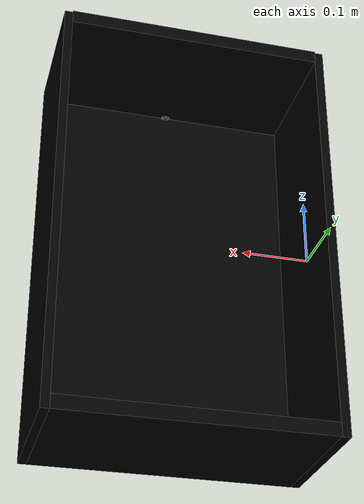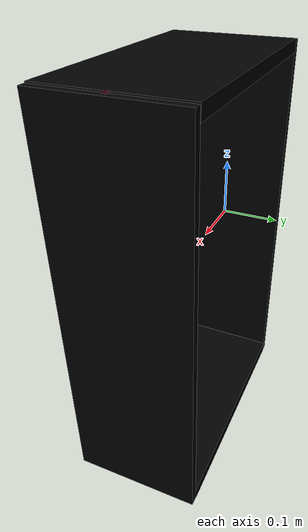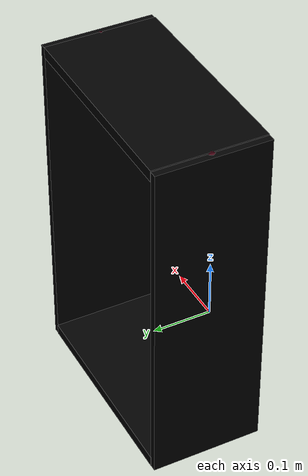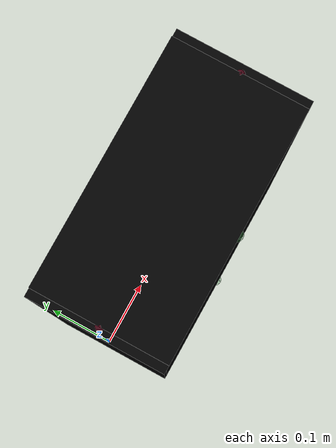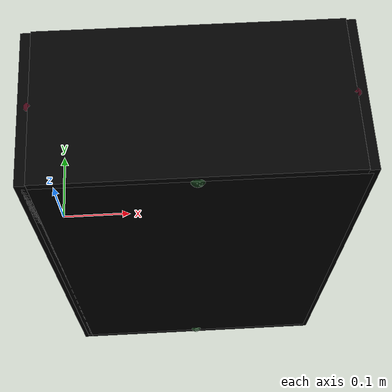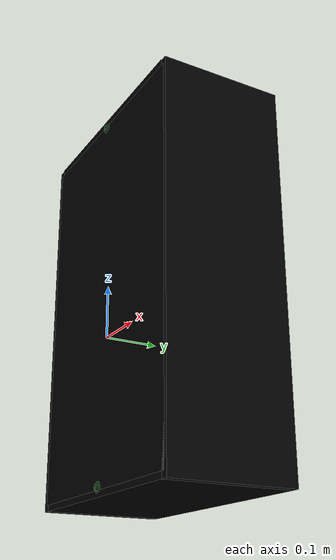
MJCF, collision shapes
<mujoco model="cabinet_lillagen_0933">
    <custom>
        <numeric data="0.439537 0.339589 0.006423 0.707107 -0.0 -0.707107 0.0" name="0_part0_initpos"/>
        <numeric data="0.054072 -0.034652 0.00251 0.50006 -0.50006 0.49994 -0.49994" name="4_part4_initpos"/>
        <numeric data="-0.438442 -0.04081 0.01013 0.707107 0.0 0.0 0.707106" name="3_part3_initpos"/>
        <numeric data="0.53541 -0.05037 0.01013 0.707107 0.0 0.0 -0.707106" name="2_part2_initpos"/>
        <numeric data="-0.276949 0.336844 0.005927 0.707107 -0.0 0.707107 -0.0" name="1_part1_initpos"/>
    </custom>
    <asset>
        <mesh file="cabinet_lillagen_0933/0.stl" name="part0" scale="0.001 0.001 0.001"/>
        <mesh file="cabinet_lillagen_0933/4.stl" name="part4" scale="0.001 0.001 0.001"/>
        <mesh file="cabinet_lillagen_0933/3.stl" name="part3" scale="0.001 0.001 0.001"/>
        <mesh file="cabinet_lillagen_0933/2.stl" name="part2" scale="0.001 0.001 0.001"/>
        <mesh file="cabinet_lillagen_0933/1.stl" name="part1" scale="0.001 0.001 0.001"/>
    </asset>
    <equality>
        <weld active="false" body1="0_part0" body2="2_part2" solimp="1 1 0.5" solref="0.01 0.3"/>
        <weld active="false" body1="0_part0" body2="3_part3" solimp="1 1 0.5" solref="0.01 0.3"/>
        <weld active="false" body1="1_part1" body2="2_part2" solimp="1 1 0.5" solref="0.01 0.3"/>
        <weld active="false" body1="1_part1" body2="3_part3" solimp="1 1 0.5" solref="0.01 0.3"/>
        <weld active="false" body1="2_part2" body2="4_part4" solimp="1 1 0.5" solref="0.01 0.3"/>
        <weld active="false" body1="3_part3" body2="4_part4" solimp="1 1 0.5" solref="0.01 0.3"/>
        <weld active="false" body1="1_part1" body2="2_part2" solimp="1 1 0.5" solref="0.01 0.3"/>
        <weld active="false" body1="1_part1" body2="3_part3" solimp="1 1 0.5" solref="0.01 0.3"/>
        <weld active="false" body1="0_part0" body2="2_part2" solimp="1 1 0.5" solref="0.01 0.3"/>
        <weld active="false" body1="0_part0" body2="3_part3" solimp="1 1 0.5" solref="0.01 0.3"/>
        <weld active="false" body1="4_part4" body2="2_part2" solimp="1 1 0.5" solref="0.01 0.3"/>
        <weld active="false" body1="4_part4" body2="3_part3" solimp="1 1 0.5" solref="0.01 0.3"/>
    </equality>
    <worldbody>
        <body name="0_part0" pos="0.0 -0.0 0.0" quat="1 0 0 0">
            <geom conaffinity="0" contype="0" density="0" mesh="part0" name="0_part0_mesh" pos="0.0 0.0 0.0"
                  rgba="0.82 0.71 0.55 1" type="mesh"/>
            <site name="0_part0_horizontal_radius_site" pos="0.0 -0.0 0.0" quat="1 0 0 0" rgba="0 0 0 0" size="0.001"/>
            <site name="0_part0_top_site" pos="0.0 0.0 0.31750000000000006" quat="1 0 0 0" rgba="0 0 0 0" size="0.001"/>
            <site name="0_part0_bottom_site" pos="0.0 0.0 -0.31750000000000006" quat="1 0 0 0" rgba="0 0 0 0"
                  size="0.001"/>
            <site name="0_part0_corner_site8" pos="-0.006350000000000001 0.10160000000000001 0.31750000000000006"
                  quat="1 0 0 0" rgba="0 0 0 0" size="0.020000000000000004"/>
            <site name="0_part0_corner_site7" pos="0.006350000000000001 0.10160000000000001 0.31750000000000006"
                  quat="1 0 0 0" rgba="0 0 0 0" size="0.020000000000000004"/>
            <site name="0_part0_corner_site6" pos="0.006350000000000001 -0.10160000000000001 0.31750000000000006"
                  quat="1 0 0 0" rgba="0 0 0 0" size="0.020000000000000004"/>
            <site name="0_part0_corner_site5" pos="-0.006350000000000001 -0.10160000000000001 0.31750000000000006"
                  quat="1 0 0 0" rgba="0 0 0 0" size="0.020000000000000004"/>
            <site name="0_part0_corner_site4" pos="-0.006350000000000001 0.10160000000000001 -0.31750000000000006"
                  quat="1 0 0 0" rgba="0 0 0 0" size="0.020000000000000004"/>
            <site name="0_part0_corner_site3" pos="0.006350000000000001 0.10160000000000001 -0.31750000000000006"
                  quat="1 0 0 0" rgba="0 0 0 0" size="0.020000000000000004"/>
            <site name="0_part0_corner_site2" pos="0.006350000000000001 -0.10160000000000001 -0.31750000000000006"
                  quat="1 0 0 0" rgba="0 0 0 0" size="0.020000000000000004"/>
            <site name="0_part0_corner_site1" pos="-0.006350000000000001 -0.10160000000000001 -0.31750000000000006"
                  quat="1 0 0 0" rgba="0 0 0 0" size="0.020000000000000004"/>
            <site name="side-flat,0,conn_site4" pos="0.007000000000000001 0.0 -0.30734" quat="0.7071067 0 0.7071068 0"
                  rgba="0.9019 0.0980 0.2941 0.3" size="0.01"/>
            <site name="side-flat,0,conn_site2" pos="0.007000000000000001 0.0 0.30800000000000005"
                  quat="0.7071067 0 0.7071068 0" rgba="0.9019 0.0980 0.2941 0.3" size="0.01"/>
            <geom density="50" name="noviz_collision_0_part0_0" pos="0.00019657 0.00097561 -0.0009270800000000002"
                  quat="1 0 0 0" rgba="0 0 0 0" size="0.006546570000000001 0.10257559999999999 0.31657290000000005"
                  solref="0.001 1" type="box"/>
        </body>
        <body name="4_part4" pos="0.1968500031 -0.09906000000000001 1.3400000000000001e-08" quat="1 0 0 0">
            <geom conaffinity="0" contype="0" density="0" mesh="part4" name="4_part4_mesh" pos="0.0 0.0 0.0"
                  rgba="0.82 0.71 0.55 1" type="mesh"/>
            <site name="4_part4_horizontal_radius_site" pos="0.0 0.0 0.0" quat="1 0 0 0" rgba="0 0 0 0" size="0.001"/>
            <site name="4_part4_top_site" pos="0.0 0.0 0.3073400269" quat="1 0 0 0" rgba="0 0 0 0" size="0.001"/>
            <site name="4_part4_bottom_site" pos="0.0 0.0 -0.3073400269" quat="1 0 0 0" rgba="0 0 0 0" size="0.001"/>
            <site name="4_part4_corner_site8" pos="-0.19685000610000003 0.0025400000000000006 0.3073400269"
                  quat="1 0 0 0" rgba="0 0 0 0" size="0.020000000000000004"/>
            <site name="4_part4_corner_site7" pos="0.19685000610000003 0.0025400000000000006 0.3073400269"
                  quat="1 0 0 0" rgba="0 0 0 0" size="0.020000000000000004"/>
            <site name="4_part4_corner_site6" pos="0.19685000610000003 -0.0025400000000000006 0.3073400269"
                  quat="1 0 0 0" rgba="0 0 0 0" size="0.020000000000000004"/>
            <site name="4_part4_corner_site5" pos="-0.19685000610000003 -0.0025400000000000006 0.3073400269"
                  quat="1 0 0 0" rgba="0 0 0 0" size="0.020000000000000004"/>
            <site name="4_part4_corner_site4" pos="-0.19685000610000003 0.0025400000000000006 -0.3073400269"
                  quat="1 0 0 0" rgba="0 0 0 0" size="0.020000000000000004"/>
            <site name="4_part4_corner_site3" pos="0.19685000610000003 0.0025400000000000006 -0.3073400269"
                  quat="1 0 0 0" rgba="0 0 0 0" size="0.020000000000000004"/>
            <site name="4_part4_corner_site2" pos="0.19685000610000003 -0.0025400000000000006 -0.3073400269"
                  quat="1 0 0 0" rgba="0 0 0 0" size="0.020000000000000004"/>
            <site name="4_part4_corner_site1" pos="-0.19685000610000003 -0.0025400000000000006 -0.3073400269"
                  quat="1 0 0 0" rgba="0 0 0 0" size="0.020000000000000004"/>
            <site name="back-flat,0,conn_site2" pos="0.0 0.0025799900000000003 -0.30301" quat="0.7071067 0.7071068 0 0"
                  rgba="0.2352 0.7058 0.2941 0.3" size="0.01"/>
            <site name="back-flat,0,conn_site1" pos="0.0 0.0025799900000000003 0.30399000000000004"
                  quat="0 0 0.7071068 -0.7071067" rgba="0.2352 0.7058 0.2941 0.3" size="0.01"/>
            <geom density="50" name="noviz_collision_4_part4_0"
                  pos="-2.0000000000000004e-08 0.0 -1.0000000000000002e-08" quat="1 0 0 0" rgba="0 0 0 0"
                  size="0.19685 0.0025400000000000006 0.30734" solref="0.001 1" type="box"/>
        </body>
        <body name="3_part3" pos="0.19685 0.0 0.30733999630000003" quat="1 0 0 0">
            <geom conaffinity="0" contype="0" density="0" mesh="part3" name="3_part3_mesh" pos="0.0 0.0 0.0"
                  rgba="0.82 0.71 0.55 1" type="mesh"/>
            <site name="3_part3_horizontal_radius_site" pos="-0.0 0.0 0.0" quat="1 0 0 0" rgba="0 0 0 0" size="0.001"/>
            <site name="3_part3_top_site" pos="0.0 0.0 0.010160003700000001" quat="1 0 0 0" rgba="0 0 0 0"
                  size="0.001"/>
            <site name="3_part3_bottom_site" pos="0.0 0.0 -0.010160003700000001" quat="1 0 0 0" rgba="0 0 0 0"
                  size="0.001"/>
            <site name="3_part3_corner_site8" pos="-0.1905 0.10160000000000001 0.010160003700000001" quat="1 0 0 0"
                  rgba="0 0 0 0" size="0.020000000000000004"/>
            <site name="3_part3_corner_site7" pos="0.1905 0.10160000000000001 0.010160003700000001" quat="1 0 0 0"
                  rgba="0 0 0 0" size="0.020000000000000004"/>
            <site name="3_part3_corner_site6" pos="0.1905 -0.10160000000000001 0.010160003700000001" quat="1 0 0 0"
                  rgba="0 0 0 0" size="0.020000000000000004"/>
            <site name="3_part3_corner_site5" pos="-0.1905 -0.10160000000000001 0.010160003700000001" quat="1 0 0 0"
                  rgba="0 0 0 0" size="0.020000000000000004"/>
            <site name="3_part3_corner_site4" pos="-0.1905 0.10160000000000001 -0.010160003700000001" quat="1 0 0 0"
                  rgba="0 0 0 0" size="0.020000000000000004"/>
            <site name="3_part3_corner_site3" pos="0.1905 0.10160000000000001 -0.010160003700000001" quat="1 0 0 0"
                  rgba="0 0 0 0" size="0.020000000000000004"/>
            <site name="3_part3_corner_site2" pos="0.1905 -0.10160000000000001 -0.010160003700000001" quat="1 0 0 0"
                  rgba="0 0 0 0" size="0.020000000000000004"/>
            <site name="3_part3_corner_site1" pos="-0.1905 -0.10160000000000001 -0.010160003700000001" quat="1 0 0 0"
                  rgba="0 0 0 0" size="0.020000000000000004"/>
            <site name="flat-side,0,conn_site2" pos="-0.18985000000000002 0.0 0.0006600000000000001"
                  quat="0.7071067 0 0.7071068 0" rgba="0.9019 0.0980 0.2941 0.3" size="0.01"/>
            <site name="flat-side,0,conn_site1" pos="0.18915000000000004 0.0 0.0006600000000000001"
                  quat="0.7071067 0 -0.7071068 0" rgba="0.9019 0.0980 0.2941 0.3" size="0.01"/>
            <site name="flat-back,0,conn_site1" pos="0.0 -0.09648000000000001 -0.0033500100000000005"
                  quat="0 0 0.7071068 -0.7071067" rgba="0.2352 0.7058 0.2941 0.3" size="0.01"/>
            <geom density="50" name="noviz_collision_3_part3_0" pos="0.0 0.0012539200000000002 6.43e-05" quat="1 0 0 0"
                  rgba="0 0 0 0" size="0.1905 0.1028539 0.0102243" solref="0.001 1" type="box"/>
        </body>
        <body name="2_part2" pos="0.19685 0.0 -0.30734" quat="1 0 0 0">
            <geom conaffinity="0" contype="0" density="0" mesh="part2" name="2_part2_mesh" pos="0.0 0.0 0.0"
                  rgba="0.82 0.71 0.55 1" type="mesh"/>
            <site name="2_part2_horizontal_radius_site" pos="0.0 0.0 0.0" quat="1 0 0 0" rgba="0 0 0 0" size="0.001"/>
            <site name="2_part2_top_site" pos="0.0 0.0 0.010160000000000002" quat="1 0 0 0" rgba="0 0 0 0"
                  size="0.001"/>
            <site name="2_part2_bottom_site" pos="0.0 0.0 -0.010160000000000002" quat="1 0 0 0" rgba="0 0 0 0"
                  size="0.001"/>
            <site name="2_part2_corner_site8" pos="-0.1905 0.10160000000000001 0.010160000000000002" quat="1 0 0 0"
                  rgba="0 0 0 0" size="0.020000000000000004"/>
            <site name="2_part2_corner_site7" pos="0.1905 0.10160000000000001 0.010160000000000002" quat="1 0 0 0"
                  rgba="0 0 0 0" size="0.020000000000000004"/>
            <site name="2_part2_corner_site6" pos="0.1905 -0.10160000000000001 0.010160000000000002" quat="1 0 0 0"
                  rgba="0 0 0 0" size="0.020000000000000004"/>
            <site name="2_part2_corner_site5" pos="-0.1905 -0.10160000000000001 0.010160000000000002" quat="1 0 0 0"
                  rgba="0 0 0 0" size="0.020000000000000004"/>
            <site name="2_part2_corner_site4" pos="-0.1905 0.10160000000000001 -0.010160000000000002" quat="1 0 0 0"
                  rgba="0 0 0 0" size="0.020000000000000004"/>
            <site name="2_part2_corner_site3" pos="0.1905 0.10160000000000001 -0.010160000000000002" quat="1 0 0 0"
                  rgba="0 0 0 0" size="0.020000000000000004"/>
            <site name="2_part2_corner_site2" pos="0.1905 -0.10160000000000001 -0.010160000000000002" quat="1 0 0 0"
                  rgba="0 0 0 0" size="0.020000000000000004"/>
            <site name="2_part2_corner_site1" pos="-0.1905 -0.10160000000000001 -0.010160000000000002" quat="1 0 0 0"
                  rgba="0 0 0 0" size="0.020000000000000004"/>
            <site name="flat-side,0,conn_site4" pos="-0.18985000000000002 0.0 0.0" quat="0.7071067 0 0.7071068 0"
                  rgba="0.9019 0.0980 0.2941 0.3" size="0.01"/>
            <site name="flat-side,0,conn_site3" pos="0.19115000000000004 0.0 0.0" quat="0.7071067 0 -0.7071068 0"
                  rgba="0.9019 0.0980 0.2941 0.3" size="0.01"/>
            <site name="flat-back,0,conn_site2" pos="0.0 -0.09648000000000001 0.00432999" quat="0.7071067 0.7071068 0 0"
                  rgba="0.2352 0.7058 0.2941 0.3" size="0.01"/>
            <geom density="50" name="noviz_collision_2_part2_0" pos="0.0 0.0012197400000000002 -0.00016675000000000001"
                  quat="1 0 0 0" rgba="0 0 0 0" size="0.1905 0.10281970000000001 0.00999326" solref="0.001 1"
                  type="box"/>
        </body>
        <body name="1_part1" pos="0.3937000061 -0.0 0.0" quat="1 0 0 0">
            <geom conaffinity="0" contype="0" density="0" mesh="part1" name="1_part1_mesh" pos="0.0 0.0 0.0"
                  rgba="0.82 0.71 0.55 1" type="mesh"/>
            <site name="1_part1_horizontal_radius_site" pos="-0.0 -0.0 0.0" quat="1 0 0 0" rgba="0 0 0 0" size="0.001"/>
            <site name="1_part1_top_site" pos="0.0 0.0 0.31750000000000006" quat="1 0 0 0" rgba="0 0 0 0" size="0.001"/>
            <site name="1_part1_bottom_site" pos="0.0 0.0 -0.31750000000000006" quat="1 0 0 0" rgba="0 0 0 0"
                  size="0.001"/>
            <site name="1_part1_corner_site8" pos="-0.0063500061 0.10160000000000001 0.31750000000000006" quat="1 0 0 0"
                  rgba="0 0 0 0" size="0.020000000000000004"/>
            <site name="1_part1_corner_site7" pos="0.0063500061 0.10160000000000001 0.31750000000000006" quat="1 0 0 0"
                  rgba="0 0 0 0" size="0.020000000000000004"/>
            <site name="1_part1_corner_site6" pos="0.0063500061 -0.10160000000000001 0.31750000000000006" quat="1 0 0 0"
                  rgba="0 0 0 0" size="0.020000000000000004"/>
            <site name="1_part1_corner_site5" pos="-0.0063500061 -0.10160000000000001 0.31750000000000006"
                  quat="1 0 0 0" rgba="0 0 0 0" size="0.020000000000000004"/>
            <site name="1_part1_corner_site4" pos="-0.0063500061 0.10160000000000001 -0.31750000000000006"
                  quat="1 0 0 0" rgba="0 0 0 0" size="0.020000000000000004"/>
            <site name="1_part1_corner_site3" pos="0.0063500061 0.10160000000000001 -0.31750000000000006" quat="1 0 0 0"
                  rgba="0 0 0 0" size="0.020000000000000004"/>
            <site name="1_part1_corner_site2" pos="0.0063500061 -0.10160000000000001 -0.31750000000000006"
                  quat="1 0 0 0" rgba="0 0 0 0" size="0.020000000000000004"/>
            <site name="1_part1_corner_site1" pos="-0.0063500061 -0.10160000000000001 -0.31750000000000006"
                  quat="1 0 0 0" rgba="0 0 0 0" size="0.020000000000000004"/>
            <site name="side-flat,0,conn_site3" pos="-0.00570001 0.0 -0.30734" quat="0.7071067 0 -0.7071068 0"
                  rgba="0.9019 0.0980 0.2941 0.3" size="0.01"/>
            <site name="side-flat,0,conn_site1" pos="-0.00770001 0.0 0.30800000000000005"
                  quat="0.7071067 0 -0.7071068 0" rgba="0.9019 0.0980 0.2941 0.3" size="0.01"/>
            <geom density="50" name="noviz_collision_1_part1_0" pos="-0.00019659 0.00097561 -0.0009270800000000002"
                  quat="1 0 0 0" rgba="0 0 0 0" size="0.006153410000000001 0.10257559999999999 0.31657290000000005"
                  solref="0.001 1" type="box"/>
        </body>
    </worldbody>
    <actuator/>
    <sensor/>
    <contact/>
    <default/>
</mujoco>
